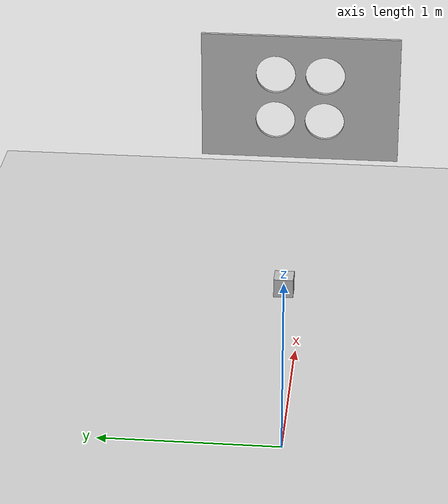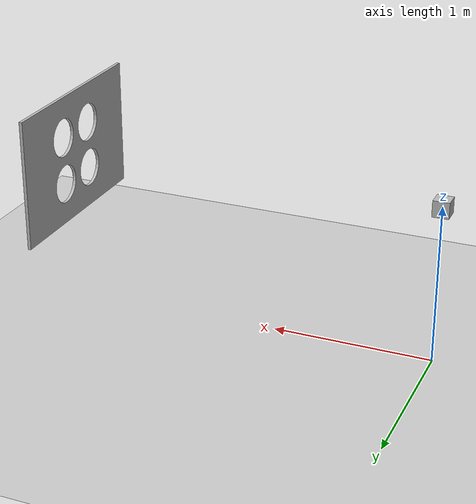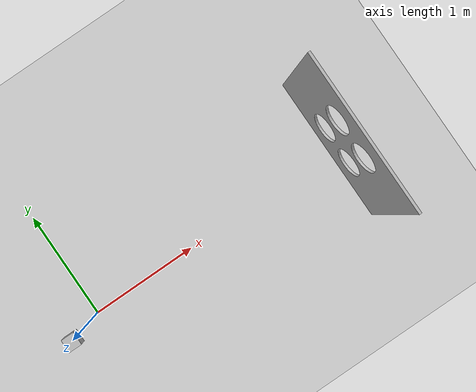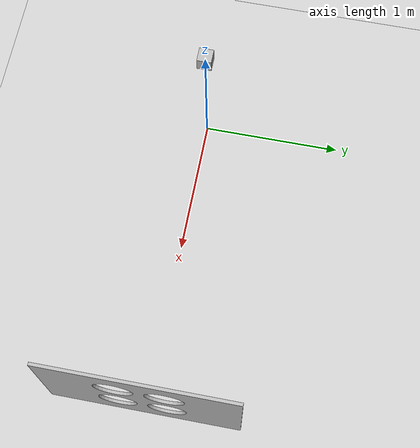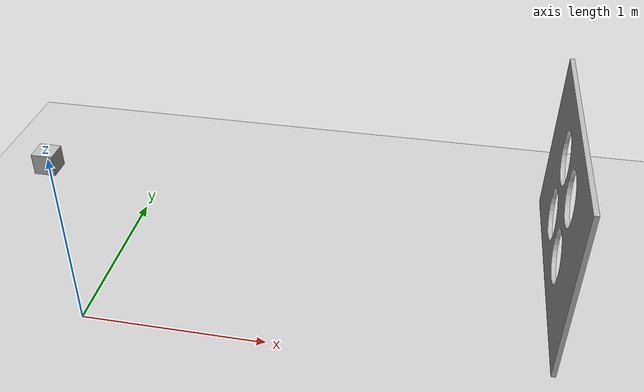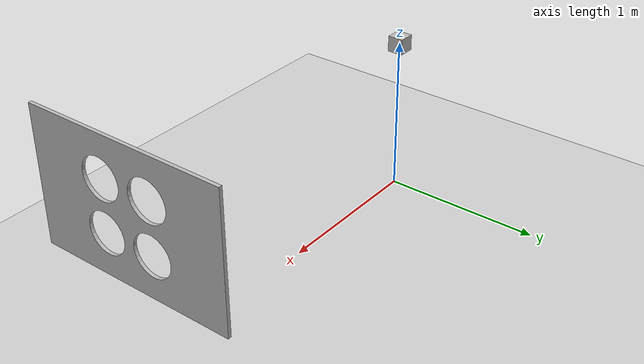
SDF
<?xml version="1.0" ?>
<sdf version="1.5">
  <world name="calibration_pattern">
    <!-- A global light source -->
    <include>
      <uri>model://sun</uri>
    </include>
    <!-- A ground plane -->
    <include>
      <uri>model://ground_plane</uri>
    </include>

    <include>
      <uri>model://bumblebee_xb3</uri>
      <pose>0 0 1 0 0 0</pose>
    </include>
    <include>
      <uri>model://calibration_wood_pattern</uri>
      <pose>2.3071 0.072197 0.6 0 0 0</pose>
    </include>
    <!-- Only one ROS interface plugin is required per world, as any other plugin can connect a Gazebo
         topic to a ROS topic (or vise versa). -->
    <plugin name="ros_interface_plugin" filename="librotors_gazebo_ros_interface_plugin.so"/>

    <physics type='ode'>
      <ode>
        <solver>
          <type>quick</type>
          <iters>1000</iters>
          <sor>1.3</sor>
        </solver>
        <constraints>
          <cfm>0</cfm>
          <erp>0.2</erp>
          <contact_max_correcting_vel>100</contact_max_correcting_vel>
          <contact_surface_layer>0.001</contact_surface_layer>
        </constraints>
      </ode>
      <max_step_size>0.01</max_step_size>
      <real_time_factor>1</real_time_factor>
      <real_time_update_rate>100</real_time_update_rate>
      <gravity>0 0 -9.8</gravity>
    </physics>
  </world>
</sdf>

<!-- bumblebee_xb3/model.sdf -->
<sdf version="1.5">
  <model name="bumblebee_xb3">
    <pose>0 0 1 0 0 0</pose>
    <static>true</static>
    <link name="link">
		<pose>0 0 0 0 0 0</pose>
      <inertial>
        <mass>0.1</mass>
        <inertia>
          <ixx>0.000166667</ixx>
          <iyy>0.000166667</iyy>
          <izz>0.000166667</izz>
        </inertia>
      </inertial>
      <collision name="collision">
		<pose>0 0 0 0 0 0</pose>
        <geometry>
          <box>
            <size>0.1 0.1 0.1</size>
          </box>
        </geometry>
      </collision>
      <visual name="visual">
		 <pose>0 0 0 0 0 0</pose>
        <geometry>
          <box>
            <size>0.1 0.1 0.1</size>
          </box>
        </geometry>
      </visual>

      <sensor type="multicamera" name="stereo_camera">
      <update_rate>10.0</update_rate>
      <camera name="left">
        <horizontal_fov>0.750492</horizontal_fov>
        <image>
          <width>1280</width>
          <height>960</height>
          <format>R8G8B8</format>
        </image>
        <clip>
          <near>0.02</near>
          <far>300</far>
        </clip>
        <noise>
          <type>gaussian</type>
          <mean>0.0</mean>
          <stddev>0.007</stddev>
        </noise>
      </camera>
      <camera name="right">
        <pose>0 -0.12 0 0 0 0</pose>
        <horizontal_fov>0.750492</horizontal_fov>
        <image>
          <width>1280</width>
          <height>960</height>
          <format>R8G8B8</format>
        </image>
        <clip>
          <near>0.02</near>
          <far>300</far>
        </clip>
        <noise>
          <type>gaussian</type>
          <mean>0.0</mean>
          <stddev>0.007</stddev>
        </noise>
      </camera>
      <plugin name="stereo_camera_controller" filename="libgazebo_ros_multicamera.so">
        <alwaysOn>true</alwaysOn>
        <updateRate>0.0</updateRate>
        <cameraName>stereo_camera/</cameraName>
        <imageTopicName>image_rect_color</imageTopicName>
        <cameraInfoTopicName>camera_info</cameraInfoTopicName>
        <frameName>stereo_camera</frameName>
        <hackBaseline>0.12</hackBaseline>
        <distortionK1>0.0</distortionK1>
        <distortionK2>0.0</distortionK2>
        <distortionK3>0.0</distortionK3>
        <distortionT1>0.0</distortionT1>
        <distortionT2>0.0</distortionT2>
      </plugin>
    </sensor>
    </link>
  </model>
</sdf>

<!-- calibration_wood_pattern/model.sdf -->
<sdf version='1.6'>
  <model name="calibration_wood_pattern">
      <pose>0 0 0.6 0 0 0</pose>
      <static>true</static>
      <link name="body">
        <visual name="visual">
			<pose>0 0 0 0 0 0</pose>
			  <geometry>
				<mesh><uri>model://calibration_wood_pattern/meshes/wood_pattern.dae</uri></mesh>
			  </geometry>
		</visual>
		  <collision name="collision">
			<pose>0 0 0  0 0 0</pose>
			  <geometry>
				<mesh><uri>model://calibration_wood_pattern/meshes/wood_pattern.stl</uri></mesh>
			  </geometry>
		  </collision>
      </link>
    </model>
</sdf>
